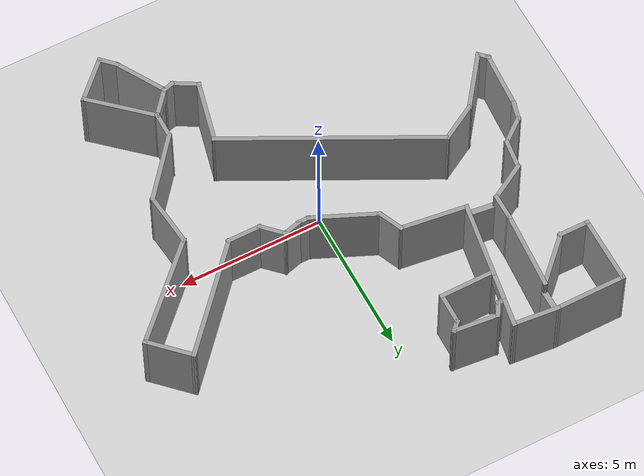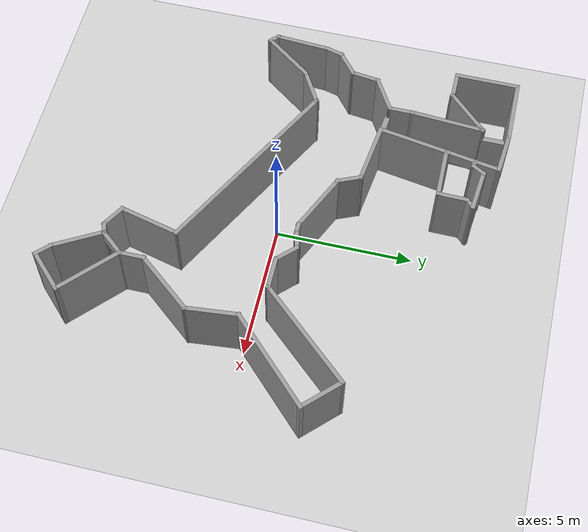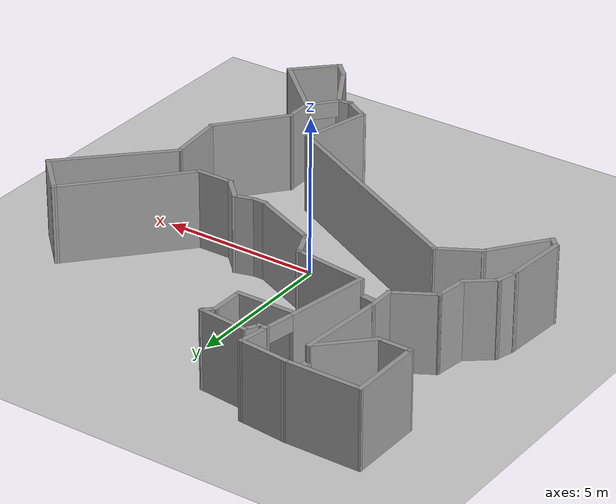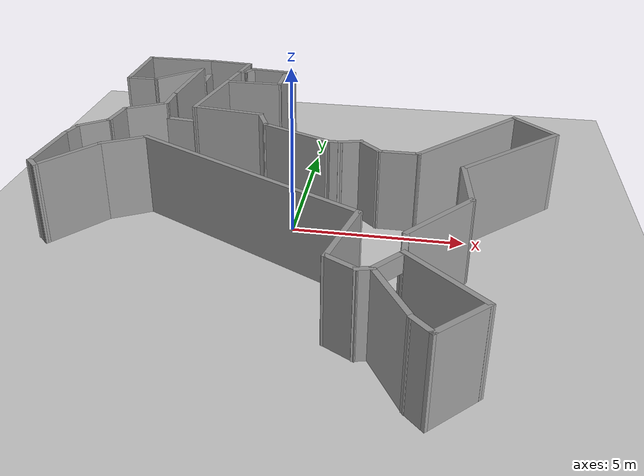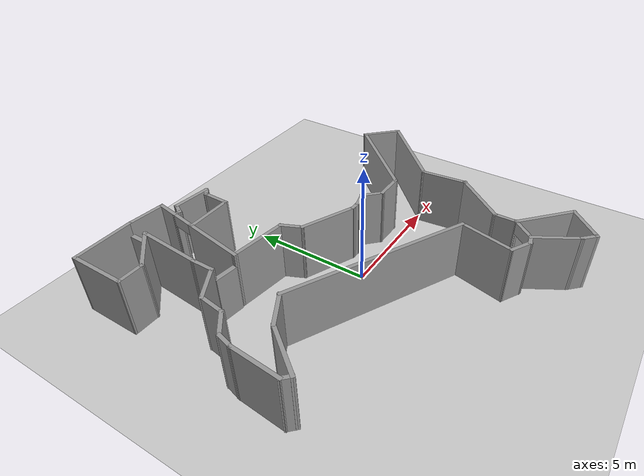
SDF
<sdf version="1.7">
 <world name="default">
  <light name="sun" type="directional">
   <pose>0 0 10 0 -0 0</pose>
   <diffuse>0.8 0.8 0.8 1</diffuse>
   <specular>0.2 0.2 0.2 1</specular>
   <attenuation>
    <range>1000</range>
    <constant>0.9</constant>
    <linear>0.01</linear>
    <quadratic>0.001</quadratic>
   </attenuation>
   <direction>-0.5 0.1 -0.9</direction>
   <spot><inner_angle>0</inner_angle><outer_angle>0</outer_angle><falloff>0</falloff></spot>
  </light>
  <model name="ground_plane">
   <static>1</static>
   <link name="link">
    <collision name="collision">
     <geometry><plane><normal>0 0 1</normal><size>100 100</size></plane></geometry>
     <surface><friction><ode><mu>100</mu><mu2>50</mu2></ode></friction></surface>
    </collision>
    <visual name="visual">
     <cast_shadows>0</cast_shadows>
     <geometry><plane><normal>0 0 1</normal><size>100 100</size></plane></geometry>
     <material>
      <script><uri>file://media/materials/scripts/gazebo.material</uri><name>Gazebo/Grey</name></script>
     </material>
    </visual>
   </link>
  </model>
  <gravity>0 0 -9.8</gravity>
  <magnetic_field>6e-06 2.3e-05 -4.2e-05</magnetic_field>
  <atmosphere type="adiabatic"/>
  <physics type="ode">
   <max_step_size>0.001</max_step_size>
   <real_time_factor>1</real_time_factor>
   <real_time_update_rate>1000</real_time_update_rate>
  </physics>
  <scene><ambient>0.4 0.4 0.4 1</ambient><background>0.7 0.7 0.7 1</background><shadows>1</shadows></scene>
  <audio><device>default</device></audio>
  <spherical_coordinates>
   <surface_model>EARTH_WGS84</surface_model>
   <latitude_deg>0</latitude_deg>
   <longitude_deg>0</longitude_deg>
   <elevation>0</elevation>
   <heading_deg>0</heading_deg>
  </spherical_coordinates>
  <model name="c82_floor">
   <pose>0.19309 0.021733 0 0 -0 0</pose>
   <link name="Door_1">
    <collision name="Door_1_Collision">
     <geometry><box><size>0.9357 0.2 2</size></box></geometry>
     <pose>0 0 1 0 -0 0</pose>
    </collision>
    <visual name="Door_1_Visual">
     <pose>0 0 1 0 -0 0</pose>
     <geometry><box><size>0.9357 0.2 2</size></box></geometry>
     <material>
      <script><uri>file://media/materials/scripts/gazebo.material</uri><name>Gazebo/Grey</name></script>
     </material>
    </visual>
    <pose>-4.45916 3.02304 0 0 -0 3.02119</pose>
   </link>
   <link name="Door_4">
    <collision name="Door_4_Collision">
     <geometry><box><size>0.848377 0.2 2</size></box></geometry>
     <pose>0 0 1 0 -0 0</pose>
    </collision>
    <visual name="Door_4_Visual">
     <pose>0 0 1 0 -0 0</pose>
     <geometry><box><size>0.848377 0.2 2</size></box></geometry>
     <material>
      <script><uri>file://media/materials/scripts/gazebo.material</uri><name>Gazebo/Grey</name></script>
     </material>
    </visual>
    <pose>-4.73001 7.01727 0 0 0 -1.57177</pose>
   </link>
   <link name="Wall_100">
    <collision name="Wall_100_Collision">
     <geometry><box><size>2.77722 0.15 2.5</size></box></geometry>
     <pose>0 0 1.25 0 -0 0</pose>
    </collision>
    <visual name="Wall_100_Visual">
     <pose>0 0 1.25 0 -0 0</pose>
     <geometry><box><size>2.77722 0.15 2.5</size></box></geometry>
     <material>
      <script><uri>file://media/materials/scripts/gazebo.material</uri><name>Gazebo/Grey</name></script>
      <ambient>1 1 1 1</ambient>
     </material>
     <meta><layer>0</layer></meta>
    </visual>
    <pose>-4.84619 5.26759 0 0 -0 1.49889</pose>
   </link>
   <link name="Wall_108">
    <collision name="Wall_108_Collision">
     <geometry><box><size>0.360588 0.15 2.5</size></box></geometry>
     <pose>0 0 1.25 0 -0 0</pose>
    </collision>
    <visual name="Wall_108_Visual">
     <pose>0 0 1.25 0 -0 0</pose>
     <geometry><box><size>0.360588 0.15 2.5</size></box></geometry>
     <material>
      <script><uri>file://media/materials/scripts/gazebo.material</uri><name>Gazebo/Grey</name></script>
      <ambient>1 1 1 1</ambient>
     </material>
     <meta><layer>0</layer></meta>
    </visual>
    <pose>-3.21103 6.50791 0 0 -0 0</pose>
   </link>
   <link name="Wall_109">
    <collision name="Wall_109_Collision">
     <geometry><box><size>0.598055 0.15 2.5</size></box></geometry>
     <pose>0 0 1.25 0 -0 0</pose>
    </collision>
    <visual name="Wall_109_Visual">
     <pose>0 0 1.25 0 -0 0</pose>
     <geometry><box><size>0.598055 0.15 2.5</size></box></geometry>
     <material>
      <script><uri>file://media/materials/scripts/gazebo.material</uri><name>Gazebo/Grey</name></script>
      <ambient>1 1 1 1</ambient>
     </material>
     <meta><layer>0</layer></meta>
    </visual>
    <pose>-2.99186 6.70079 0 0 -0 1.03709</pose>
   </link>
   <link name="Wall_110">
    <collision name="Wall_110_Collision">
     <geometry><box><size>1.63516 0.15 2.5</size></box></geometry>
     <pose>0 0 1.25 0 -0 0</pose>
    </collision>
    <visual name="Wall_110_Visual">
     <pose>0 0 1.25 0 -0 0</pose>
     <geometry><box><size>1.63516 0.15 2.5</size></box></geometry>
     <material>
      <script><uri>file://media/materials/scripts/gazebo.material</uri><name>Gazebo/Grey</name></script>
      <ambient>1 1 1 1</ambient>
     </material>
     <meta><layer>0</layer></meta>
    </visual>
    <pose>-2.13928 6.81695 0 0 -0 -0.103487</pose>
   </link>
   <link name="Wall_111">
    <collision name="Wall_111_Collision">
     <geometry><box><size>0.5 0.15 2.5</size></box></geometry>
     <pose>0 0 1.25 0 -0 0</pose>
    </collision>
    <visual name="Wall_111_Visual">
     <pose>0 0 1.25 0 -0 0</pose>
     <geometry><box><size>0.5 0.15 2.5</size></box></geometry>
     <material>
      <script><uri>file://media/materials/scripts/gazebo.material</uri><name>Gazebo/Grey</name></script>
      <ambient>1 1 1 1</ambient>
     </material>
     <meta><layer>0</layer></meta>
    </visual>
    <pose>-1.52441 6.61649 0 0 -0 -2.35619</pose>
   </link>
   <link name="Wall_112">
    <collision name="Wall_112_Collision">
     <geometry><box><size>1.1781 0.15 2.5</size></box></geometry>
     <pose>0 0 1.25 0 -0 0</pose>
    </collision>
    <visual name="Wall_112_Visual">
     <pose>0 0 1.25 0 -0 0</pose>
     <geometry><box><size>1.1781 0.15 2.5</size></box></geometry>
     <material>
      <script><uri>file://media/materials/scripts/gazebo.material</uri><name>Gazebo/Grey</name></script>
      <ambient>1 1 1 1</ambient>
     </material>
     <meta><layer>0</layer></meta>
    </visual>
    <pose>-1.65591 5.9787 0 0 -0 -1.58589</pose>
   </link>
   <link name="Wall_114">
    <collision name="Wall_114_Collision">
     <geometry><box><size>1.9497 0.15 2.5</size></box></geometry>
     <pose>0 0 1.25 0 -0 0</pose>
    </collision>
    <visual name="Wall_114_Visual">
     <pose>0 0 1.25 0 -0 0</pose>
     <geometry><box><size>1.9497 0.15 2.5</size></box></geometry>
     <material>
      <script><uri>file://media/materials/scripts/gazebo.material</uri><name>Gazebo/Grey</name></script>
      <ambient>1 1 1 1</ambient>
     </material>
     <meta><layer>0</layer></meta>
    </visual>
    <pose>-2.56351 5.45967 0 0 -0 -3.13605</pose>
   </link>
   <link name="Wall_116">
    <collision name="Wall_116_Collision">
     <geometry><box><size>2 0.15 2.5</size></box></geometry>
     <pose>0 0 1.25 0 -0 0</pose>
    </collision>
    <visual name="Wall_116_Visual">
     <pose>0 0 1.25 0 -0 0</pose>
     <geometry><box><size>2 0.15 2.5</size></box></geometry>
     <material>
      <script><uri>file://media/materials/scripts/gazebo.material</uri><name>Gazebo/Grey</name></script>
      <ambient>1 1 1 1</ambient>
     </material>
     <meta><layer>0</layer></meta>
    </visual>
    <pose>3.03726 -6.29799 0 0 -0 -1.0472</pose>
   </link>
   <link name="Wall_117">
    <collision name="Wall_117_Collision">
     <geometry><box><size>0.75 0.15 2.5</size></box></geometry>
     <pose>0 0 1.25 0 -0 0</pose>
    </collision>
    <visual name="Wall_117_Visual">
     <pose>0 0 1.25 0 -0 0</pose>
     <geometry><box><size>0.75 0.15 2.5</size></box></geometry>
     <material>
      <script><uri>file://media/materials/scripts/gazebo.material</uri><name>Gazebo/Grey</name></script>
      <ambient>1 1 1 1</ambient>
     </material>
     <meta><layer>0</layer></meta>
    </visual>
    <pose>3.7119 -7.3112 0 0 -0 -0.785398</pose>
   </link>
   <link name="Wall_118">
    <collision name="Wall_118_Collision">
     <geometry><box><size>1.73115 0.15 2.5</size></box></geometry>
     <pose>0 0 1.25 0 -0 0</pose>
    </collision>
    <visual name="Wall_118_Visual">
     <pose>0 0 1.25 0 -0 0</pose>
     <geometry><box><size>1.73115 0.15 2.5</size></box></geometry>
     <material>
      <script><uri>file://media/materials/scripts/gazebo.material</uri><name>Gazebo/Grey</name></script>
      <ambient>1 1 1 1</ambient>
     </material>
     <meta><layer>0</layer></meta>
    </visual>
    <pose>4.48319 -6.96446 0 0 -0 0.785138</pose>
   </link>
   <link name="Wall_119">
    <collision name="Wall_119_Collision">
     <geometry><box><size>2.62496 0.15 2.5</size></box></geometry>
     <pose>0 0 1.25 0 -0 0</pose>
    </collision>
    <visual name="Wall_119_Visual">
     <pose>0 0 1.25 0 -0 0</pose>
     <geometry><box><size>2.62496 0.15 2.5</size></box></geometry>
     <material>
      <script><uri>file://media/materials/scripts/gazebo.material</uri><name>Gazebo/Grey</name></script>
      <ambient>1 1 1 1</ambient>
     </material>
     <meta><layer>0</layer></meta>
    </visual>
    <pose>4.1322 -5.56714 0 0 -0 2.39718</pose>
   </link>
   <link name="Wall_123">
    <collision name="Wall_123_Collision">
     <geometry><box><size>2 0.15 2.5</size></box></geometry>
     <pose>0 0 1.25 0 -0 0</pose>
    </collision>
    <visual name="Wall_123_Visual">
     <pose>0 0 1.25 0 -0 0</pose>
     <geometry><box><size>2 0.15 2.5</size></box></geometry>
     <material>
      <script><uri>file://media/materials/scripts/gazebo.material</uri><name>Gazebo/Grey</name></script>
      <ambient>1 1 1 1</ambient>
     </material>
     <meta><layer>0</layer></meta>
    </visual>
    <pose>-5.40588 5.92373 0 0 -0 -2.35619</pose>
   </link>
   <link name="Wall_124">
    <collision name="Wall_124_Collision">
     <geometry><box><size>1.12148 0.15 2.5</size></box></geometry>
     <pose>0 0 1.25 0 -0 0</pose>
    </collision>
    <visual name="Wall_124_Visual">
     <pose>0 0 1.25 0 -0 0</pose>
     <geometry><box><size>1.12148 0.15 2.5</size></box></geometry>
     <material>
      <script><uri>file://media/materials/scripts/gazebo.material</uri><name>Gazebo/Grey</name></script>
      <ambient>1 1 1 1</ambient>
     </material>
     <meta><layer>0</layer></meta>
    </visual>
    <pose>-6.54569 5.2743 0 0 -0 3.13204</pose>
   </link>
   <link name="Wall_127">
    <collision name="Wall_127_Collision">
     <geometry><box><size>2.41865 0.15 2.5</size></box></geometry>
     <pose>0 0 1.25 0 -0 0</pose>
    </collision>
    <visual name="Wall_127_Visual">
     <pose>0 0 1.25 0 -0 0</pose>
     <geometry><box><size>2.41865 0.15 2.5</size></box></geometry>
     <material>
      <script><uri>file://media/materials/scripts/gazebo.material</uri><name>Gazebo/Grey</name></script>
      <ambient>1 1 1 1</ambient>
     </material>
     <meta><layer>0</layer></meta>
    </visual>
    <pose>-7.02576 6.41325 0 0 -0 -1.57579</pose>
   </link>
   <link name="Wall_61">
    <collision name="Wall_61_Collision">
     <geometry><box><size>2.5 0.15 2.5</size></box></geometry>
     <pose>0 0 1.25 0 -0 0</pose>
    </collision>
    <visual name="Wall_61_Visual">
     <pose>0 0 1.25 0 -0 0</pose>
     <geometry><box><size>2.5 0.15 2.5</size></box></geometry>
     <material>
      <script><uri>file://media/materials/scripts/gazebo.material</uri><name>Gazebo/Grey</name></script>
      <ambient>1 1 1 1</ambient>
     </material>
     <meta><layer>0</layer></meta>
    </visual>
    <pose>-5.8451 7.54756 0 0 -0 0</pose>
   </link>
   <link name="Wall_62">
    <collision name="Wall_62_Collision">
     <geometry><box><size>1.65487 0.15 2.5</size></box></geometry>
     <pose>0 0 1.25 0 -0 0</pose>
    </collision>
    <visual name="Wall_62_Visual">
     <pose>0 0 1.25 0 -0 0</pose>
     <geometry><box><size>1.65487 0.15 2.5</size></box></geometry>
     <material>
      <script><uri>file://media/materials/scripts/gazebo.material</uri><name>Gazebo/Grey</name></script>
      <ambient>1 1 1 1</ambient>
     </material>
     <meta><layer>0</layer></meta>
    </visual>
    <pose>-3.92112 7.47546 0 0 -0 -0.095962</pose>
   </link>
   <link name="Wall_69">
    <pose>-3.55077 5.18698 0 0 -0 -1.73999</pose>
    <visual name="Wall_69_Visual_0">
     <pose>-1.81737 0 1.25 0 -0 0</pose>
     <geometry><box><size>1.01225 0.15 2.5</size></box></geometry>
     <material>
      <script><uri>file://media/materials/scripts/gazebo.material</uri><name>Gazebo/Grey</name></script>
      <ambient>1 1 1 1</ambient>
     </material>
     <meta><layer>0</layer></meta>
    </visual>
    <collision name="Wall_69_Collision_0">
     <geometry><box><size>1.01225 0.15 2.5</size></box></geometry>
     <pose>-1.81737 0 1.25 0 -0 0</pose>
    </collision>
    <visual name="Wall_69_Visual_1">
     <pose>0.956123 0 1.25 0 -0 0</pose>
     <geometry><box><size>2.73474 0.15 2.5</size></box></geometry>
     <material>
      <script><uri>file://media/materials/scripts/gazebo.material</uri><name>Gazebo/Grey</name></script>
      <ambient>1 1 1 1</ambient>
     </material>
     <meta><layer>0</layer></meta>
    </visual>
    <collision name="Wall_69_Collision_1">
     <geometry><box><size>2.73474 0.15 2.5</size></box></geometry>
     <pose>0.956123 0 1.25 0 -0 0</pose>
    </collision>
    <visual name="Wall_69_Visual_2">
     <pose>-0.861245 0 2.25 0 -0 0</pose>
     <geometry><box><size>0.9 0.15 0.5</size></box></geometry>
     <material>
      <script><uri>file://media/materials/scripts/gazebo.material</uri><name>Gazebo/Grey</name></script>
      <ambient>1 1 1 1</ambient>
     </material>
     <meta><layer>0</layer></meta>
    </visual>
    <collision name="Wall_69_Collision_2">
     <geometry><box><size>0.9 0.15 0.5</size></box></geometry>
     <pose>-0.861245 0 2.25 0 -0 0</pose>
    </collision>
   </link>
   <link name="Wall_70">
    <collision name="Wall_70_Collision">
     <geometry><box><size>2.38978 0.15 2.5</size></box></geometry>
     <pose>0 0 1.25 0 -0 0</pose>
    </collision>
    <visual name="Wall_70_Visual">
     <pose>0 0 1.25 0 -0 0</pose>
     <geometry><box><size>2.38978 0.15 2.5</size></box></geometry>
     <material>
      <script><uri>file://media/materials/scripts/gazebo.material</uri><name>Gazebo/Grey</name></script>
      <ambient>1 1 1 1</ambient>
     </material>
     <meta><layer>0</layer></meta>
    </visual>
    <pose>-2.81913 2.82411 0 0 -0 -0.131187</pose>
   </link>
   <link name="Wall_71">
    <collision name="Wall_71_Collision">
     <geometry><box><size>0.992355 0.15 2.5</size></box></geometry>
     <pose>0 0 1.25 0 -0 0</pose>
    </collision>
    <visual name="Wall_71_Visual">
     <pose>0 0 1.25 0 -0 0</pose>
     <geometry><box><size>0.992355 0.15 2.5</size></box></geometry>
     <material>
      <script><uri>file://media/materials/scripts/gazebo.material</uri><name>Gazebo/Grey</name></script>
      <ambient>1 1 1 1</ambient>
     </material>
     <meta><layer>0</layer></meta>
    </visual>
    <pose>-1.53923 2.2921 0 0 -0 -1.15629</pose>
   </link>
   <link name="Wall_74">
    <collision name="Wall_74_Collision">
     <geometry><box><size>2.41953 0.15 2.5</size></box></geometry>
     <pose>0 0 1.25 0 -0 0</pose>
    </collision>
    <visual name="Wall_74_Visual">
     <pose>0 0 1.25 0 -0 0</pose>
     <geometry><box><size>2.41953 0.15 2.5</size></box></geometry>
     <material>
      <script><uri>file://media/materials/scripts/gazebo.material</uri><name>Gazebo/Grey</name></script>
      <ambient>1 1 1 1</ambient>
     </material>
     <meta><layer>0</layer></meta>
    </visual>
    <pose>-0.33536 1.43967 0 0 -0 -0.424066</pose>
   </link>
   <link name="Wall_75">
    <collision name="Wall_75_Collision">
     <geometry><box><size>0.5 0.15 2.5</size></box></geometry>
     <pose>0 0 1.25 0 -0 0</pose>
    </collision>
    <visual name="Wall_75_Visual">
     <pose>0 0 1.25 0 -0 0</pose>
     <geometry><box><size>0.5 0.15 2.5</size></box></geometry>
     <material>
      <script><uri>file://media/materials/scripts/gazebo.material</uri><name>Gazebo/Grey</name></script>
      <ambient>1 1 1 1</ambient>
     </material>
     <meta><layer>0</layer></meta>
    </visual>
    <pose>0.87389 0.97275 0 0 -0 0</pose>
   </link>
   <link name="Wall_76">
    <collision name="Wall_76_Collision">
     <geometry><box><size>0.75 0.15 2.5</size></box></geometry>
     <pose>0 0 1.25 0 -0 0</pose>
    </collision>
    <visual name="Wall_76_Visual">
     <pose>0 0 1.25 0 -0 0</pose>
     <geometry><box><size>0.75 0.15 2.5</size></box></geometry>
     <material>
      <script><uri>file://media/materials/scripts/gazebo.material</uri><name>Gazebo/Grey</name></script>
      <ambient>1 1 1 1</ambient>
     </material>
     <meta><layer>0</layer></meta>
    </visual>
    <pose>1.33867 1.05039 0 0 -0 0.261799</pose>
   </link>
   <link name="Wall_77">
    <collision name="Wall_77_Collision">
     <geometry><box><size>1 0.15 2.5</size></box></geometry>
     <pose>0 0 1.25 0 -0 0</pose>
    </collision>
    <visual name="Wall_77_Visual">
     <pose>0 0 1.25 0 -0 0</pose>
     <geometry><box><size>1 0.15 2.5</size></box></geometry>
     <material>
      <script><uri>file://media/materials/scripts/gazebo.material</uri><name>Gazebo/Grey</name></script>
      <ambient>1 1 1 1</ambient>
     </material>
     <meta><layer>0</layer></meta>
    </visual>
    <pose>1.92897 0.827521 0 0 -0 -0.785398</pose>
   </link>
   <link name="Wall_78">
    <collision name="Wall_78_Collision">
     <geometry><box><size>1.25 0.15 2.5</size></box></geometry>
     <pose>0 0 1.25 0 -0 0</pose>
    </collision>
    <visual name="Wall_78_Visual">
     <pose>0 0 1.25 0 -0 0</pose>
     <geometry><box><size>1.25 0.15 2.5</size></box></geometry>
     <material>
      <script><uri>file://media/materials/scripts/gazebo.material</uri><name>Gazebo/Grey</name></script>
      <ambient>1 1 1 1</ambient>
     </material>
     <meta><layer>0</layer></meta>
    </visual>
    <pose>2.77949 0.527 0 0 -0 0</pose>
   </link>
   <link name="Wall_79">
    <collision name="Wall_79_Collision">
     <geometry><box><size>4.39469 0.15 2.5</size></box></geometry>
     <pose>0 0 1.25 0 -0 0</pose>
    </collision>
    <visual name="Wall_79_Visual">
     <pose>0 0 1.25 0 -0 0</pose>
     <geometry><box><size>4.39469 0.15 2.5</size></box></geometry>
     <material>
      <script><uri>file://media/materials/scripts/gazebo.material</uri><name>Gazebo/Grey</name></script>
      <ambient>1 1 1 1</ambient>
     </material>
     <meta><layer>0</layer></meta>
    </visual>
    <pose>4.74963 2.10419 0 0 -0 0.837744</pose>
   </link>
   <link name="Wall_80">
    <collision name="Wall_80_Collision">
     <geometry><box><size>1.75 0.15 2.5</size></box></geometry>
     <pose>0 0 1.25 0 -0 0</pose>
    </collision>
    <visual name="Wall_80_Visual">
     <pose>0 0 1.25 0 -0 0</pose>
     <geometry><box><size>1.75 0.15 2.5</size></box></geometry>
     <material>
      <script><uri>file://media/materials/scripts/gazebo.material</uri><name>Gazebo/Grey</name></script>
      <ambient>1 1 1 1</ambient>
     </material>
     <meta><layer>0</layer></meta>
    </visual>
    <pose>6.73547 3.11569 0 0 -0 -0.785398</pose>
   </link>
   <link name="Wall_81">
    <collision name="Wall_81_Collision">
     <geometry><box><size>4 0.15 2.5</size></box></geometry>
     <pose>0 0 1.25 0 -0 0</pose>
    </collision>
    <visual name="Wall_81_Visual">
     <pose>0 0 1.25 0 -0 0</pose>
     <geometry><box><size>4 0.15 2.5</size></box></geometry>
     <material>
      <script><uri>file://media/materials/scripts/gazebo.material</uri><name>Gazebo/Grey</name></script>
      <ambient>1 1 1 1</ambient>
     </material>
     <meta><layer>0</layer></meta>
    </visual>
    <pose>5.93997 1.18883 0 0 -0 -2.35619</pose>
   </link>
   <link name="Wall_82">
    <collision name="Wall_82_Collision">
     <geometry><box><size>1.97736 0.15 2.5</size></box></geometry>
     <pose>0 0 1.25 0 -0 0</pose>
    </collision>
    <visual name="Wall_82_Visual">
     <pose>0 0 1.25 0 -0 0</pose>
     <geometry><box><size>1.97736 0.15 2.5</size></box></geometry>
     <material>
      <script><uri>file://media/materials/scripts/gazebo.material</uri><name>Gazebo/Grey</name></script>
      <ambient>1 1 1 1</ambient>
     </material>
     <meta><layer>0</layer></meta>
    </visual>
    <pose>4.66908 -1.08156 0 0 -0 -1.47182</pose>
   </link>
   <link name="Wall_83">
    <collision name="Wall_83_Collision">
     <geometry><box><size>2.58467 0.15 2.5</size></box></geometry>
     <pose>0 0 1.25 0 -0 0</pose>
    </collision>
    <visual name="Wall_83_Visual">
     <pose>0 0 1.25 0 -0 0</pose>
     <geometry><box><size>2.58467 0.15 2.5</size></box></geometry>
     <material>
      <script><uri>file://media/materials/scripts/gazebo.material</uri><name>Gazebo/Grey</name></script>
      <ambient>1 1 1 1</ambient>
     </material>
     <meta><layer>0</layer></meta>
    </visual>
    <pose>3.99071 -2.93473 0 0 -0 -2.25419</pose>
   </link>
   <link name="Wall_84">
    <collision name="Wall_84_Collision">
     <geometry><box><size>1 0.15 2.5</size></box></geometry>
     <pose>0 0 1.25 0 -0 0</pose>
    </collision>
    <visual name="Wall_84_Visual">
     <pose>0 0 1.25 0 -0 0</pose>
     <geometry><box><size>1 0.15 2.5</size></box></geometry>
     <material>
      <script><uri>file://media/materials/scripts/gazebo.material</uri><name>Gazebo/Grey</name></script>
      <ambient>1 1 1 1</ambient>
     </material>
     <meta><layer>0</layer></meta>
    </visual>
    <pose>3.22205 -4.3037 0 0 -0 -1.5708</pose>
   </link>
   <link name="Wall_85">
    <pose>2.89841 -5.11281 0 0 -0 -2.27097</pose>
    <visual name="Wall_85_Visual_0">
     <pose>-0.490325 0 1.25 0 -0 0</pose>
     <geometry><box><size>0.173915 0.15 2.5</size></box></geometry>
     <material>
      <script><uri>file://media/materials/scripts/gazebo.material</uri><name>Gazebo/Grey</name></script>
      <ambient>1 1 1 1</ambient>
     </material>
     <meta><layer>0</layer></meta>
    </visual>
    <collision name="Wall_85_Collision_0">
     <geometry><box><size>0.173915 0.15 2.5</size></box></geometry>
     <pose>-0.490325 0 1.25 0 -0 0</pose>
    </collision>
    <visual name="Wall_85_Visual_1">
     <pose>0.536957 0 1.25 0 -0 0</pose>
     <geometry><box><size>0.08065 0.15 2.5</size></box></geometry>
     <material>
      <script><uri>file://media/materials/scripts/gazebo.material</uri><name>Gazebo/Grey</name></script>
      <ambient>1 1 1 1</ambient>
     </material>
     <meta><layer>0</layer></meta>
    </visual>
    <collision name="Wall_85_Collision_1">
     <geometry><box><size>0.08065 0.15 2.5</size></box></geometry>
     <pose>0.536957 0 1.25 0 -0 0</pose>
    </collision>
    <visual name="Wall_85_Visual_2">
     <pose>0.046632 0 2.25 0 -0 0</pose>
     <geometry><box><size>0.9 0.15 0.5</size></box></geometry>
     <material>
      <script><uri>file://media/materials/scripts/gazebo.material</uri><name>Gazebo/Grey</name></script>
      <ambient>1 1 1 1</ambient>
     </material>
     <meta><layer>0</layer></meta>
    </visual>
    <collision name="Wall_85_Collision_2">
     <geometry><box><size>0.9 0.15 0.5</size></box></geometry>
     <pose>0.046632 0 2.25 0 -0 0</pose>
    </collision>
   </link>
   <link name="Wall_86">
    <collision name="Wall_86_Collision">
     <geometry><box><size>0.5 0.15 2.5</size></box></geometry>
     <pose>0 0 1.25 0 -0 0</pose>
    </collision>
    <visual name="Wall_86_Visual">
     <pose>0 0 1.25 0 -0 0</pose>
     <geometry><box><size>0.5 0.15 2.5</size></box></geometry>
     <material>
      <script><uri>file://media/materials/scripts/gazebo.material</uri><name>Gazebo/Grey</name></script>
      <ambient>1 1 1 1</ambient>
     </material>
     <meta><layer>0</layer></meta>
    </visual>
    <pose>2.40573 -5.54221 0 0 -0 -2.87979</pose>
   </link>
   <link name="Wall_87">
    <collision name="Wall_87_Collision">
     <geometry><box><size>1 0.15 2.5</size></box></geometry>
     <pose>0 0 1.25 0 -0 0</pose>
    </collision>
    <visual name="Wall_87_Visual">
     <pose>0 0 1.25 0 -0 0</pose>
     <geometry><box><size>1 0.15 2.5</size></box></geometry>
     <material>
      <script><uri>file://media/materials/scripts/gazebo.material</uri><name>Gazebo/Grey</name></script>
      <ambient>1 1 1 1</ambient>
     </material>
     <meta><layer>0</layer></meta>
    </visual>
    <pose>1.86863 -5.37501 0 0 -0 2.61799</pose>
   </link>
   <link name="Wall_88">
    <collision name="Wall_88_Collision">
     <geometry><box><size>2.30365 0.15 2.5</size></box></geometry>
     <pose>0 0 1.25 0 -0 0</pose>
    </collision>
    <visual name="Wall_88_Visual">
     <pose>0 0 1.25 0 -0 0</pose>
     <geometry><box><size>2.30365 0.15 2.5</size></box></geometry>
     <material>
      <script><uri>file://media/materials/scripts/gazebo.material</uri><name>Gazebo/Grey</name></script>
      <ambient>1 1 1 1</ambient>
     </material>
     <meta><layer>0</layer></meta>
    </visual>
    <pose>1.75448 -4.11605 0 0 -0 1.33276</pose>
   </link>
   <link name="Wall_89">
    <collision name="Wall_89_Collision">
     <geometry><box><size>7.6655 0.15 2.5</size></box></geometry>
     <pose>0 0 1.25 0 -0 0</pose>
    </collision>
    <visual name="Wall_89_Visual">
     <pose>0 0 1.25 0 -0 0</pose>
     <geometry><box><size>7.6655 0.15 2.5</size></box></geometry>
     <material>
      <script><uri>file://media/materials/scripts/gazebo.material</uri><name>Gazebo/Grey</name></script>
      <ambient>1 1 1 1</ambient>
     </material>
     <meta><layer>0</layer></meta>
    </visual>
    <pose>-1.32246 -1.33 0 0 -0 2.66029</pose>
   </link>
   <link name="Wall_90">
    <collision name="Wall_90_Collision">
     <geometry><box><size>1.5 0.15 2.5</size></box></geometry>
     <pose>0 0 1.25 0 -0 0</pose>
    </collision>
    <visual name="Wall_90_Visual">
     <pose>0 0 1.25 0 -0 0</pose>
     <geometry><box><size>1.5 0.15 2.5</size></box></geometry>
     <material>
      <script><uri>file://media/materials/scripts/gazebo.material</uri><name>Gazebo/Grey</name></script>
      <ambient>1 1 1 1</ambient>
     </material>
     <meta><layer>0</layer></meta>
    </visual>
    <pose>-5.23787 0.072094 0 0 -0 -2.61799</pose>
   </link>
   <link name="Wall_91">
    <collision name="Wall_91_Collision">
     <geometry><box><size>2.2043 0.15 2.5</size></box></geometry>
     <pose>0 0 1.25 0 -0 0</pose>
    </collision>
    <visual name="Wall_91_Visual">
     <pose>0 0 1.25 0 -0 0</pose>
     <geometry><box><size>2.2043 0.15 2.5</size></box></geometry>
     <material>
      <script><uri>file://media/materials/scripts/gazebo.material</uri><name>Gazebo/Grey</name></script>
      <ambient>1 1 1 1</ambient>
     </material>
     <meta><layer>0</layer></meta>
    </visual>
    <pose>-6.43805 -1.08763 0 0 -0 -2.21348</pose>
   </link>
   <link name="Wall_92">
    <collision name="Wall_92_Collision">
     <geometry><box><size>0.5 0.15 2.5</size></box></geometry>
     <pose>0 0 1.25 0 -0 0</pose>
    </collision>
    <visual name="Wall_92_Visual">
     <pose>0 0 1.25 0 -0 0</pose>
     <geometry><box><size>0.5 0.15 2.5</size></box></geometry>
     <material>
      <script><uri>file://media/materials/scripts/gazebo.material</uri><name>Gazebo/Grey</name></script>
      <ambient>1 1 1 1</ambient>
     </material>
     <meta><layer>0</layer></meta>
    </visual>
    <pose>-7.17741 -1.78611 0 0 -0 2.35619</pose>
   </link>
   <link name="Wall_93">
    <collision name="Wall_93_Collision">
     <geometry><box><size>2.09214 0.15 2.5</size></box></geometry>
     <pose>0 0 1.25 0 -0 0</pose>
    </collision>
    <visual name="Wall_93_Visual">
     <pose>0 0 1.25 0 -0 0</pose>
     <geometry><box><size>2.09214 0.15 2.5</size></box></geometry>
     <material>
      <script><uri>file://media/materials/scripts/gazebo.material</uri><name>Gazebo/Grey</name></script>
      <ambient>1 1 1 1</ambient>
     </material>
     <meta><layer>0</layer></meta>
    </visual>
    <pose>-7.23135 -0.693815 0 0 -0 1.49885</pose>
   </link>
   <link name="Wall_94">
    <collision name="Wall_94_Collision">
     <geometry><box><size>0.75 0.15 2.5</size></box></geometry>
     <pose>0 0 1.25 0 -0 0</pose>
    </collision>
    <visual name="Wall_94_Visual">
     <pose>0 0 1.25 0 -0 0</pose>
     <geometry><box><size>0.75 0.15 2.5</size></box></geometry>
     <material>
      <script><uri>file://media/materials/scripts/gazebo.material</uri><name>Gazebo/Grey</name></script>
      <ambient>1 1 1 1</ambient>
     </material>
     <meta><layer>0</layer></meta>
    </visual>
    <pose>-7.0839 0.56452 0 0 -0 1.309</pose>
   </link>
   <link name="Wall_95">
    <collision name="Wall_95_Collision">
     <geometry><box><size>1.12407 0.15 2.5</size></box></geometry>
     <pose>0 0 1.25 0 -0 0</pose>
    </collision>
    <visual name="Wall_95_Visual">
     <pose>0 0 1.25 0 -0 0</pose>
     <geometry><box><size>1.12407 0.15 2.5</size></box></geometry>
     <material>
      <script><uri>file://media/materials/scripts/gazebo.material</uri><name>Gazebo/Grey</name></script>
      <ambient>1 1 1 1</ambient>
     </material>
     <meta><layer>0</layer></meta>
    </visual>
    <pose>-6.6254 1.15787 0 0 -0 0.672961</pose>
   </link>
   <link name="Wall_96">
    <collision name="Wall_96_Collision">
     <geometry><box><size>1.13025 0.15 2.5</size></box></geometry>
     <pose>0 0 1.25 0 -0 0</pose>
    </collision>
    <visual name="Wall_96_Visual">
     <pose>0 0 1.25 0 -0 0</pose>
     <geometry><box><size>1.13025 0.15 2.5</size></box></geometry>
     <material>
      <script><uri>file://media/materials/scripts/gazebo.material</uri><name>Gazebo/Grey</name></script>
      <ambient>1 1 1 1</ambient>
     </material>
     <meta><layer>0</layer></meta>
    </visual>
    <pose>-6.17713 1.94691 0 0 -0 1.43279</pose>
   </link>
   <link name="Wall_97">
    <collision name="Wall_97_Collision">
     <geometry><box><size>1.5 0.15 2.5</size></box></geometry>
     <pose>0 0 1.25 0 -0 0</pose>
    </collision>
    <visual name="Wall_97_Visual">
     <pose>0 0 1.25 0 -0 0</pose>
     <geometry><box><size>1.5 0.15 2.5</size></box></geometry>
     <material>
      <script><uri>file://media/materials/scripts/gazebo.material</uri><name>Gazebo/Grey</name></script>
      <ambient>1 1 1 1</ambient>
     </material>
     <meta><layer>0</layer></meta>
    </visual>
    <pose>-5.52513 2.76987 0 0 -0 0.523599</pose>
   </link>
   <link name="Wall_98">
    <collision name="Wall_98_Collision">
     <geometry><box><size>1 0.15 2.5</size></box></geometry>
     <pose>0 0 1.25 0 -0 0</pose>
    </collision>
    <visual name="Wall_98_Visual">
     <pose>0 0 1.25 0 -0 0</pose>
     <geometry><box><size>1 0.15 2.5</size></box></geometry>
     <material>
      <script><uri>file://media/materials/scripts/gazebo.material</uri><name>Gazebo/Grey</name></script>
      <ambient>1 1 1 1</ambient>
     </material>
     <meta><layer>0</layer></meta>
    </visual>
    <pose>-4.94057 3.53237 0 0 -0 1.5708</pose>
   </link>
   <link name="Wall_99">
    <collision name="Wall_99_Collision">
     <geometry><box><size>0.15 0.15 2.5</size></box></geometry>
     <pose>0 0 1.25 0 -0 0</pose>
    </collision>
    <visual name="Wall_99_Visual">
     <pose>0 0 1.25 0 -0 0</pose>
     <geometry><box><size>0.15 0.15 2.5</size></box></geometry>
     <material>
      <script><uri>file://media/materials/scripts/gazebo.material</uri><name>Gazebo/Grey</name></script>
      <ambient>1 1 1 1</ambient>
     </material>
     <meta><layer>0</layer></meta>
    </visual>
    <pose>-4.94057 3.95737 0 0 -0 0</pose>
   </link>
   <static>1</static>
  </model>
 </world>
</sdf>
